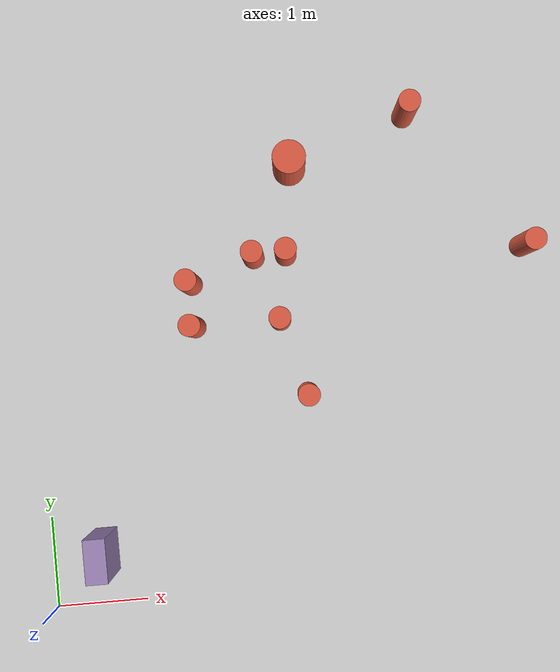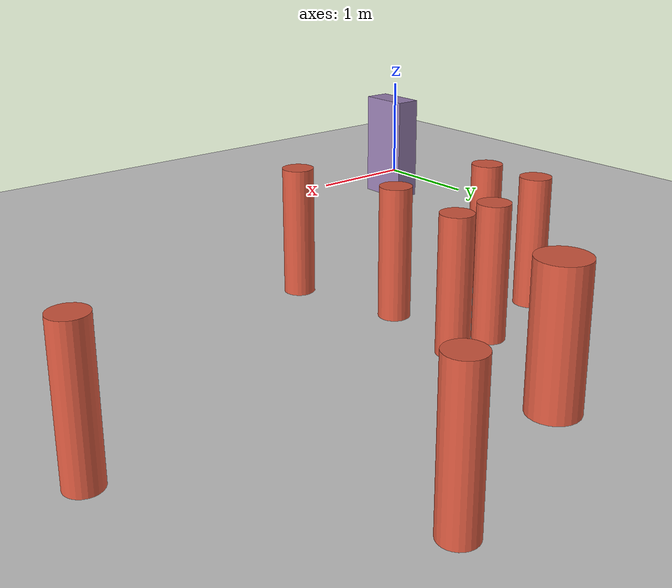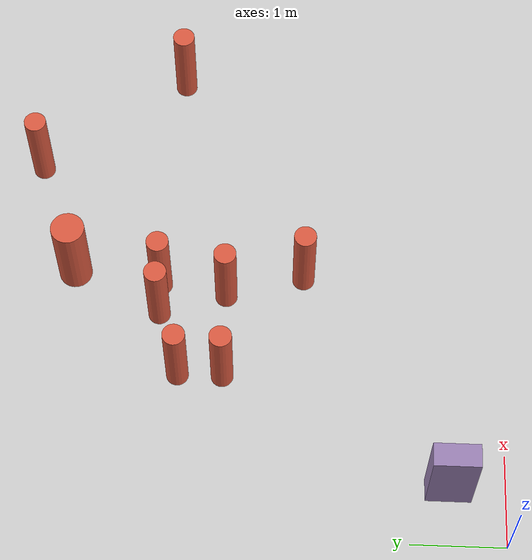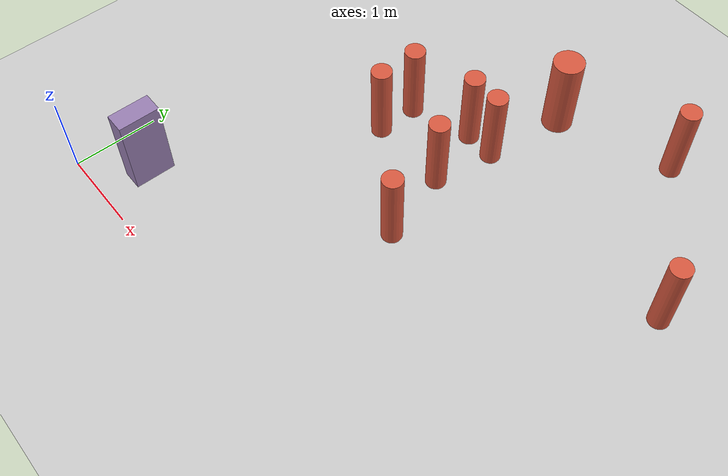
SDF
<sdf version="1.6">
 <world name="tb3_irs_convex">
  <physics type="ode"><max_step_size>0.001</max_step_size><real_time_factor>1</real_time_factor></physics>
  <include><uri>model://sun</uri></include>
  <include><uri>model://ground_plane</uri></include>
  <model name="obs_0">
   <static>true</static>
   <pose>3.000 4.680 0.5 0 0 0</pose>
   <link name="link">
    <collision name="c">
     <geometry><cylinder><radius>0.180</radius><length>1.0</length></cylinder></geometry>
    </collision>
    <visual name="v">
     <geometry><cylinder><radius>0.180</radius><length>1.0</length></cylinder></geometry>
     <material><ambient>0.85 0.35 0.25 1</ambient></material>
    </visual>
   </link>
  </model>
  <model name="obs_1">
   <static>true</static>
   <pose>4.320 5.160 0.5 0 0 0</pose>
   <link name="link">
    <collision name="c">
     <geometry><cylinder><radius>0.120</radius><length>1.0</length></cylinder></geometry>
    </collision>
    <visual name="v">
     <geometry><cylinder><radius>0.120</radius><length>1.0</length></cylinder></geometry>
     <material><ambient>0.85 0.35 0.25 1</ambient></material>
    </visual>
   </link>
  </model>
  <model name="obs_2">
   <static>true</static>
   <pose>1.800 3.000 0.5 0 0 0</pose>
   <link name="link">
    <collision name="c">
     <geometry><cylinder><radius>0.120</radius><length>1.0</length></cylinder></geometry>
    </collision>
    <visual name="v">
     <geometry><cylinder><radius>0.120</radius><length>1.0</length></cylinder></geometry>
     <material><ambient>0.85 0.35 0.25 1</ambient></material>
    </visual>
   </link>
  </model>
  <model name="obs_3">
   <static>true</static>
   <pose>5.520 3.600 0.5 0 0 0</pose>
   <link name="link">
    <collision name="c">
     <geometry><cylinder><radius>0.120</radius><length>1.0</length></cylinder></geometry>
    </collision>
    <visual name="v">
     <geometry><cylinder><radius>0.120</radius><length>1.0</length></cylinder></geometry>
     <material><ambient>0.85 0.35 0.25 1</ambient></material>
    </visual>
   </link>
  </model>
  <model name="obs_4">
   <static>true</static>
   <pose>3.000 2.160 0.5 0 0 0</pose>
   <link name="link">
    <collision name="c">
     <geometry><cylinder><radius>0.120</radius><length>1.0</length></cylinder></geometry>
    </collision>
    <visual name="v">
     <geometry><cylinder><radius>0.120</radius><length>1.0</length></cylinder></geometry>
     <material><ambient>0.85 0.35 0.25 1</ambient></material>
    </visual>
   </link>
  </model>
  <model name="obs_5">
   <static>true</static>
   <pose>2.520 3.720 0.5 0 0 0</pose>
   <link name="link">
    <collision name="c">
     <geometry><cylinder><radius>0.120</radius><length>1.0</length></cylinder></geometry>
    </collision>
    <visual name="v">
     <geometry><cylinder><radius>0.120</radius><length>1.0</length></cylinder></geometry>
     <material><ambient>0.85 0.35 0.25 1</ambient></material>
    </visual>
   </link>
  </model>
  <model name="obs_6">
   <static>true</static>
   <pose>1.800 3.480 0.5 0 0 0</pose>
   <link name="link">
    <collision name="c">
     <geometry><cylinder><radius>0.120</radius><length>1.0</length></cylinder></geometry>
    </collision>
    <visual name="v">
     <geometry><cylinder><radius>0.120</radius><length>1.0</length></cylinder></geometry>
     <material><ambient>0.85 0.35 0.25 1</ambient></material>
    </visual>
   </link>
  </model>
  <model name="obs_7">
   <static>true</static>
   <pose>2.760 3.000 0.5 0 0 0</pose>
   <link name="link">
    <collision name="c">
     <geometry><cylinder><radius>0.120</radius><length>1.0</length></cylinder></geometry>
    </collision>
    <visual name="v">
     <geometry><cylinder><radius>0.120</radius><length>1.0</length></cylinder></geometry>
     <material><ambient>0.85 0.35 0.25 1</ambient></material>
    </visual>
   </link>
  </model>
  <model name="obs_8">
   <static>true</static>
   <pose>2.520 3.720 0.5 0 0 0</pose>
   <link name="link">
    <collision name="c">
     <geometry><cylinder><radius>0.120</radius><length>1.0</length></cylinder></geometry>
    </collision>
    <visual name="v">
     <geometry><cylinder><radius>0.120</radius><length>1.0</length></cylinder></geometry>
     <material><ambient>0.85 0.35 0.25 1</ambient></material>
    </visual>
   </link>
  </model>
  <model name="obs_9">
   <static>true</static>
   <pose>2.880 3.720 0.5 0 0 0</pose>
   <link name="link">
    <collision name="c">
     <geometry><cylinder><radius>0.120</radius><length>1.0</length></cylinder></geometry>
    </collision>
    <visual name="v">
     <geometry><cylinder><radius>0.120</radius><length>1.0</length></cylinder></geometry>
     <material><ambient>0.85 0.35 0.25 1</ambient></material>
    </visual>
   </link>
  </model>
  <model name="obs_10">
   <static>true</static>
   <pose>0.600 0.600 0.5 0 0 0</pose>
   <link name="link">
    <collision name="c"><geometry><box><size>0.240 0.480 1.0</size></box></geometry></collision>
    <visual name="v">
     <geometry><box><size>0.240 0.480 1.0</size></box></geometry>
     <material><ambient>0.6 0.5 0.7 1</ambient></material>
    </visual>
   </link>
  </model>
 </world>
</sdf>
